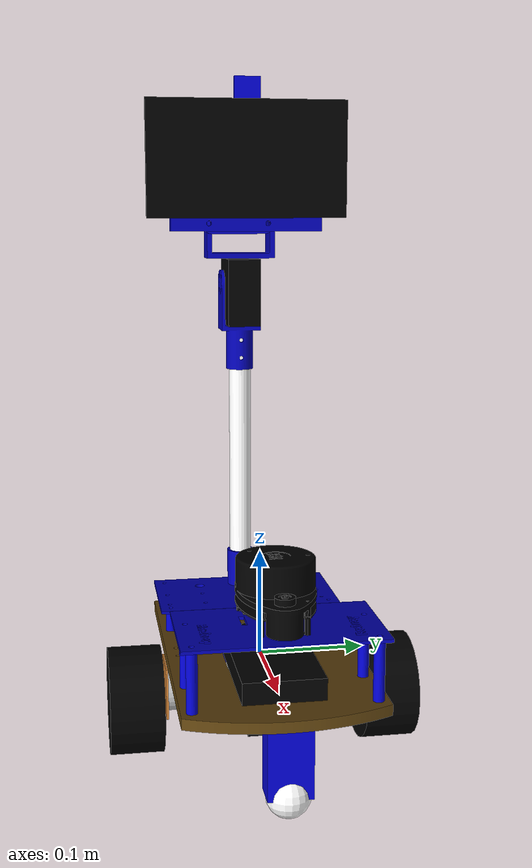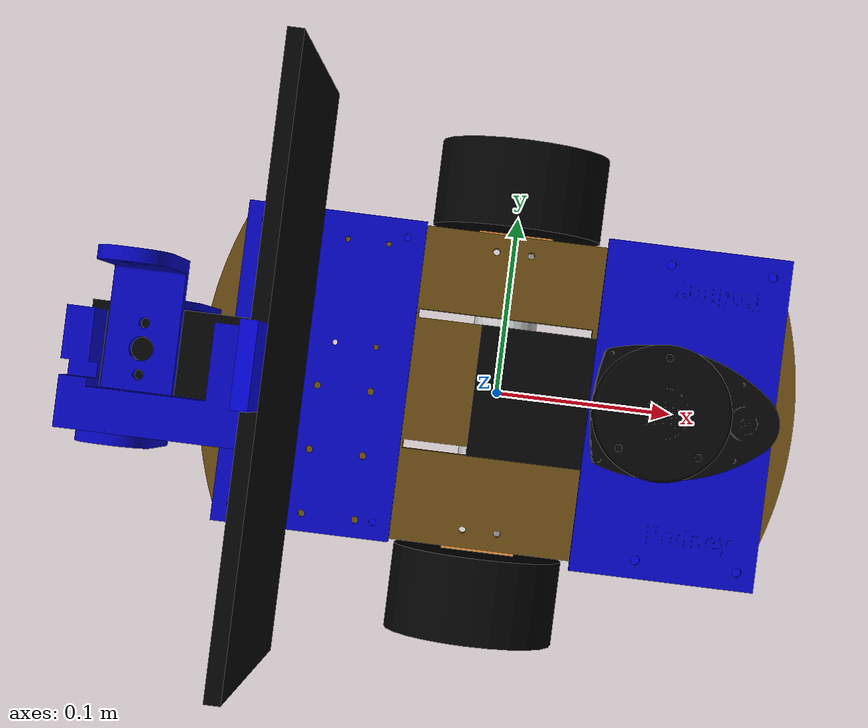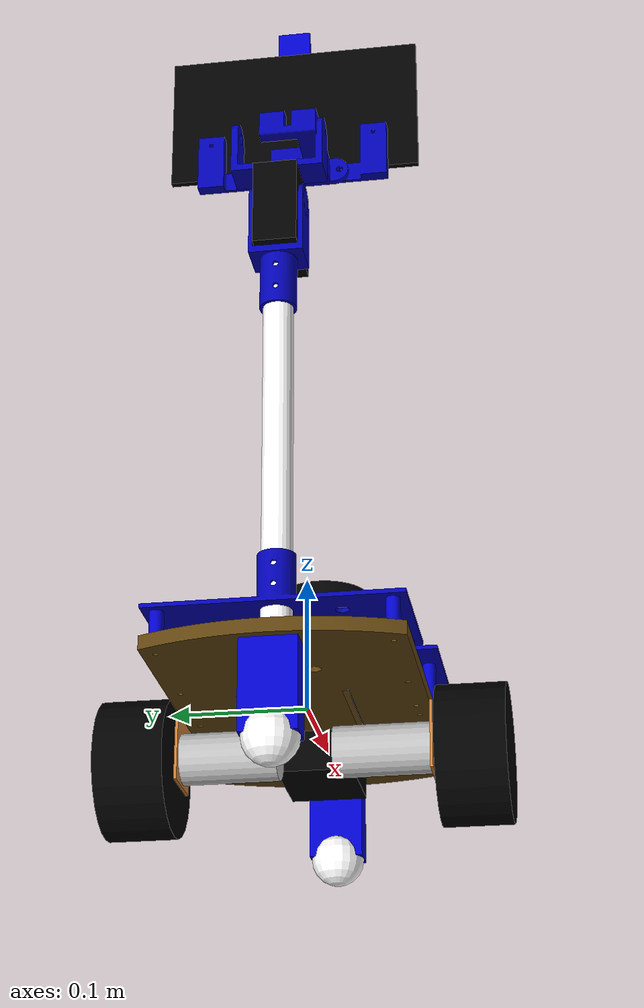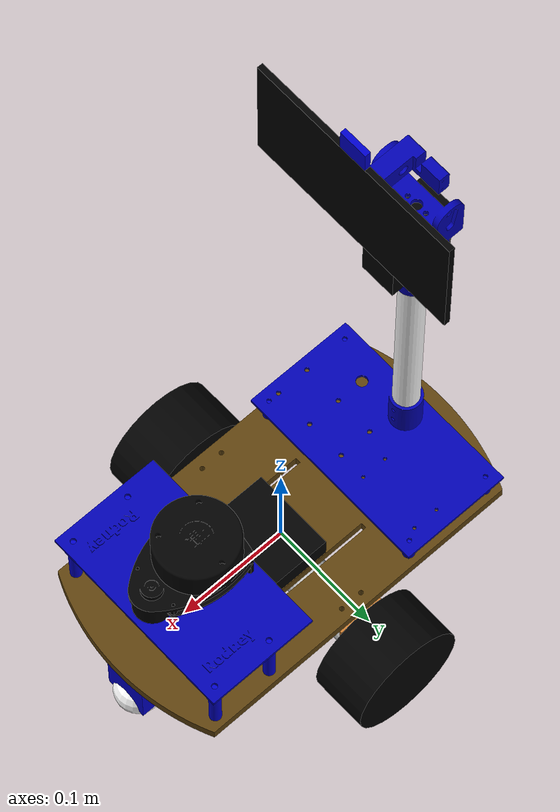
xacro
<?xml version="1.0"?>
<robot xmlns:xacro="http://www.ros.org/wiki/xacro" name="Rodney">

  <material name="blue">
    <color rgba="0 0 0.8 1"/>
  </material>

  <material name="white">
    <color rgba="1 1 1 1"/>
  </material>

  <material name="black">
    <color rgba="0 0 0 1"/>
  </material>

  <material name="silver">
    <color rgba="0.75 0.75 0.75 1"/>
  </material>

  <material name="bronze">
    <color rgba="0.8 0.498 0.196 1"/>
  </material>

  <xacro:property name="base_x" value="0.340"/>
  <xacro:property name="base_y" value="0.180"/>
  <xacro:property name="base_z" value="0.010"/>

  <link name="base_link">
    <visual>
      <geometry>
        <mesh filename="package://rodney/meshes/rodneyBase.dae"/>
      </geometry>
      <origin xyz="0.0 0.0 -${base_z/2.0}"/>
    </visual>
    <collision>
      <geometry>
        <box size="${base_x} ${base_y} ${base_z}"/>
      </geometry>
    </collision>
    <inertial>
      <mass value="0.300"/>
      <inertia ixx="0.000813" ixy="0.0" ixz="0.0" iyy="0.002893" iyz="0.0" izz="0.0037"/>
    </inertial>
  </link>

  <!-- Battery packs -->

  <link name="AAx10">
    <visual>
      <geometry>
        <box size="0.075 0.056 0.030"/>
      </geometry>
      <material name="black" />
    </visual>
    <collision>
      <geometry>
        <box size="0.075 0.056 0.030"/>
      </geometry>
    </collision>
    <inertial>
      <mass value="0.259"/>
      <inertia ixx="8.71e-5" ixy="0.0" ixz="0.0" iyy="0.000141" iyz="0.0" izz="0.000189"/>
    </inertial>
  </link>

  <joint name="base_to_AAx10" type="fixed">
    <parent link="base_link"/>
    <child link="AAx10"/>
    <origin xyz="0.070 0.0 -0.020"/>
  </joint>

  <link name="USB_PACK">
    <visual>
      <geometry>
        <box size="0.146 0.074 0.020"/>
      </geometry>
      <material name="black" />
    </visual>
    <collision>
      <geometry>
        <box size="0.146 0.074 0.020"/>
      </geometry>
    </collision>
    <inertial>
      <mass value="0.358"/>
      <inertia ixx="0.000175" ixy="0.0" ixz="0.0" iyy="0.000648" iyz="0.0" izz="0.000799"/>
    </inertial>
  </link>

  <joint name="base_to_USB_PACK" type="fixed">
    <parent link="base_link"/>
    <child link="USB_PACK"/>
    <origin xyz="0.060 0.0 0.015"/>
  </joint>

  <!-- Motors and wheels -->

  <xacro:macro name="motor_bracket" params="prefix reflect">
    <link name="${prefix}_motor_bracket">
      <visual>
        <geometry>
          <box size="0.042 0.049 0.002"/>
        </geometry>
        <origin rpy="1.58 0 0"/>
        <material name="bronze"/>
      </visual>
      <collision>
        <geometry>
          <box size="0.042 0.049 0.002"/>
        </geometry>
        <origin rpy="1.58 0 0"/>
      </collision>
      <inertial>
        <origin rpy="1.58 0 0"/>
        <mass value="0.035"/>
        <inertia ixx="7.01e-6" ixy="0.0" ixz="0.0" iyy="5.16e-6" iyz="0.0" izz="1.21e-5"/>
      </inertial>
    </link>
    <joint name="base_to_${prefix}_motor_bracket" type="fixed">
      <parent link="base_link"/>
      <child link="${prefix}_motor_bracket"/>
      <origin xyz="0.0 ${reflect*0.091} -0.0291"/>
    </joint>
  </xacro:macro>

  <xacro:macro name="motor" params="prefix reflect">
    <link name="${prefix}_motor">
      <visual>
        <geometry>
          <cylinder length="0.070" radius="0.0185"/>
        </geometry>
        <origin rpy="1.57 0 0"/>
        <material name="silver"/>
      </visual>
      <collision>
        <geometry>
          <cylinder length="0.070" radius="0.0185"/>
        </geometry>
        <origin rpy="1.57 0 0"/>
      </collision>
      <inertial>
        <origin rpy="1.57 0 0"/>
        <mass value="0.206"/>
        <inertia ixx="0.000101743" ixy="0.0" ixz="0.0" iyy="0.000101743" iyz="0.0" izz="3.52518e-5"/>
      </inertial>
    </link>
    <joint name="${prefix}_brk_to_${prefix}_motor" type="fixed">
      <parent link="${prefix}_motor_bracket"/>
      <child link="${prefix}_motor"/>
      <origin xyz="0.0 ${reflect*0.036} -0.004"/>
    </joint>
  </xacro:macro>

  <xacro:macro name="wheel" params="prefix reflect">
    <link name="${prefix}_wheel">
      <visual>
        <geometry>
          <cylinder length="0.050" radius="0.050"/>
        </geometry>
        <origin rpy="1.57 0 0"/>
        <material name="black"/>
      </visual>
      <collision>
        <geometry>
          <cylinder length="0.050" radius="0.050"/>
        </geometry>
        <origin rpy="1.57 0 0"/>
      </collision>
      <inertial>
        <origin rpy="1.57 0 0"/>
        <mass value="0.117"/>
      <inertia ixx="0.0000975" ixy="0.0" ixz="0.0" iyy="0.0000975" iyz="0.0" izz="0.00014625"/>
      </inertial>
    </link>
    <joint name="${prefix}_brk_to_${prefix}_wheel" type="continuous">
      <axis xyz="0 1 0"/>
      <parent link="${prefix}_motor_bracket"/>
      <child link="${prefix}_wheel"/>
      <origin xyz="0.0 ${reflect*0.029} -0.0105"/>
    </joint>
  </xacro:macro>

  <!-- left -->
  <xacro:motor_bracket prefix="left" reflect="1"/>
  <xacro:motor prefix="left" reflect="-1"/>
  <xacro:wheel prefix="left" reflect="1"/>

  <!-- right -->
  <xacro:motor_bracket prefix="right" reflect="-1"/>
  <xacro:motor prefix="right" reflect="1"/>
  <xacro:wheel prefix="right" reflect="-1"/>

  <!-- Casters -->

  <xacro:macro name="caster_bracket" params="prefix reflect">
    <link name="${prefix}_caster_bracket">
      <visual>
        <geometry>
          <box size="0.025 0.040 0.065"/>
        </geometry>
        <material name="blue" />
      </visual>
      <collision>
        <geometry>
          <box size="0.025 0.040 0.065"/>
        </geometry>
      </collision>
      <inertial>
        <mass value="0.030"/>
        <inertia ixx="1.46e-5" ixy="0.0" ixz="0.0" iyy="2.21e-5" iyz="0.0" izz="5.56e-6"/>
      </inertial>
    </link>
    <joint name="base_to_${prefix}_caster" type="fixed">
      <parent link="base_link"/>
      <child link="${prefix}_caster_bracket"/>
      <origin xyz="${reflect*0.150} 0.0 -0.037"/>
    </joint>
  </xacro:macro>

  <xacro:macro name="caster" params="prefix">
    <link name="${prefix}_caster">
      <visual>
        <geometry>
          <sphere radius="0.020"/>
        </geometry>
        <material name="white" />
      </visual>
      <collision>
        <geometry>
          <sphere radius="0.020"/>
        </geometry>
      </collision>
      <inertial>
        <mass value="0.003"/>
        <inertia ixx="4.8e-7" ixy="0.0" ixz="0.0" iyy="4.8e-7" iyz="0.0" izz="4.8e-7"/>
      </inertial>
    </link>
    <joint name="${prefix}_caster_bk_to_ball" type="continuous">
      <axis xyz="1 1 1"/>
      <parent link="${prefix}_caster_bracket"/>
      <child link="${prefix}_caster"/>
      <origin xyz="0.0 0.0 -0.0325"/>
    </joint>
  </xacro:macro>

  <!-- Front -->
  <xacro:caster_bracket prefix="front" reflect="1"/>
  <xacro:caster prefix="front"/>

  <!-- Rear -->
  <xacro:caster_bracket prefix="rear" reflect="-1"/>
  <xacro:caster prefix="rear"/>

  <!-- Rear platform -->

  <xacro:property name="rear_post_height" value="0.020"/>
  <xacro:property name="rear_post_radius" value="0.005"/>

  <xacro:macro name="rear_post" params="postfix pos_x reflect_y">
    <link name="rear_post_${postfix}">
      <visual>
        <geometry>
          <cylinder length="${rear_post_height}" radius="${rear_post_radius}"/>
        </geometry>
        <origin xyz="0.0 0.0 ${rear_post_height/2.0}"/>
        <material name="blue"/>
      </visual>
      <collision>
        <geometry>
          <cylinder length="${rear_post_height}" radius="${rear_post_radius}"/>
        </geometry>
        <origin xyz="0.0 0.0 ${rear_post_height/2.0}"/>
      </collision>
      <inertial>
        <!-- Move centre of gravity back to middle of link -->
        <origin xyz="0.0 0.0 ${rear_post_height/2.0}"/>
        <mass value="0.001"/>
        <inertia ixx="3.95833e-8" ixy="0.0" ixz="0.0" iyy="3.95833e-8" iyz="0.0" izz="1.25e-8"/>
      </inertial>
    </link>
    <joint name="base_to_rear_post_${postfix}" type="fixed">
      <parent link="base_link"/>
      <child link="rear_post_${postfix}"/>
      <origin xyz="${pos_x} ${reflect_y*((base_y/2.0)-0.010)} ${base_z/2.0}"/>
    </joint>
  </xacro:macro>

  <xacro:rear_post postfix="1" pos_x="-0.06" reflect_y="1"/>
  <xacro:rear_post postfix="2" pos_x="-0.14" reflect_y="1"/>
  <xacro:rear_post postfix="3" pos_x="-0.06" reflect_y="-1"/>
  <xacro:rear_post postfix="4" pos_x="-0.14" reflect_y="-1"/>

  <xacro:property name="rear_platf_z" value="0.003"/>

  <link name="rear_platform">
    <visual>
      <geometry>
        <mesh filename="package://rodney/meshes/smallRearPlatform.dae"/>
      </geometry>
      <origin rpy="0 0 1.57" xyz="0.050 0.0 -${rear_platf_z/2.0}"/>
    </visual>
    <collision>
      <geometry>
        <box size="0.180 0.098 0.003"/>
      </geometry>
    </collision>
    <inertial>
      <mass value="0.050"/>
      <inertia ixx="4.01e-5" ixy="0.0" ixz="0.0" iyy="0.000135" iyz="0.0" izz="0.000175"/>
    </inertial>
  </link>

  <joint name="rear_post_1_to_rear_platform" type="fixed">
    <parent link="rear_post_1"/>
    <child link="rear_platform"/>
    <origin xyz="-0.040 -0.080 ${rear_post_height+(rear_platf_z/2.0)}"/>
  </joint>

  <!-- Neck and head -->

  <link name="neck">
    <visual>
      <geometry>
        <cylinder length="0.30" radius="0.011"/>
      </geometry>
      <material name="white"/>
    </visual>
    <collision>
      <geometry>
        <cylinder length="0.30" radius="0.011"/>
      </geometry>
    </collision>
    <inertial>
      <mass value="0.033"/>
      <inertia ixx="0.000248498" ixy="0.0" ixz="0.0" iyy="1.9965e-6" iyz="0.0" izz="0.000248498"/>
    </inertial>
  </link>

  <joint name="rear_platform_to_neck" type="fixed">
    <parent link="rear_platform"/>
    <child link="neck"/>
    <origin xyz="-0.030 0.0 0.1205"/>
  </joint>

  <link name="head_fixing">
    <visual>
      <geometry>
        <mesh filename="package://rodney/meshes/headFixing.dae"/>
      </geometry>
      <origin xyz="0.0 0.0 -0.040"/>
    </visual>
    <collision>
      <geometry>
        <box size="0.03 0.04 0.1"/>
      </geometry>
    </collision>
    <inertial>
      <mass value="0.015"/>
      <inertia ixx="1.45e-5" ixy="0.0" ixz="0.0" iyy="1.36e-5" iyz="0.0" izz="3.13e-6"/>
    </inertial>
  </link>

  <joint name="neck_to_head_fixing" type="fixed">
    <parent link="neck"/>
    <child link="head_fixing"/>
    <origin xyz="0.0 0.0 0.150"/>
  </joint>

  <link name="head_pan_servo_block">
    <visual>
      <geometry>
        <box size="0.057 0.032 0.066"/>
      </geometry>
      <material name="black"/>
    </visual>
    <collision>
      <geometry>
        <box size="0.057 0.032 0.066"/>
      </geometry>
    </collision>
    <inertial>
      <mass value="0.084"/>
      <inertia ixx="3.77e-5" ixy="0.0" ixz="0.0" iyy="5.23e-5" iyz="0.0" izz="2.99e-5"/>
    </inertial>
  </link>

  <joint name="head_fixing_to_servo_block" type="fixed">
    <parent link="head_fixing"/>
    <child link="head_pan_servo_block"/>
    <origin xyz="0.008 0.0 0.039"/>
  </joint>

  <link name="head_pan_bracket">
    <visual>
      <geometry>
        <mesh filename="package://rodney/meshes/headPanBracket.dae"/>
      </geometry>
    </visual>
    <collision>
      <geometry>
        <box size="0.025 0.068 0.045"/>
      </geometry>
      <origin xyz="0.0 0.0 0.0225"/>
    </collision>
    <inertial>
      <mass value="0.010"/>
      <inertia ixx="5.54e-6" ixy="0.0" ixz="0.0" iyy="2.21e-6" iyz="0.0" izz="4.37e-6"/>
    </inertial>
  </link>

  <joint name="head_pan" type="revolute">
    <axis xyz="0 0 1"/>
    <limit effort="1000.0" lower="-1.5708" upper="1.5708" velocity="0.5"/>
    <parent link="head_pan_servo_block"/>
    <child link="head_pan_bracket"/>
    <origin xyz="-0.008 0.0 0.033"/>
  </joint>

  <link name="head_tilt_arm">
    <visual>
      <geometry>
        <mesh filename="package://rodney/meshes/headTiltArm.dae"/>
      </geometry>
      <!-- Using origin of mesh which helps to line up the peices connected to this odd shape -->
    </visual>
    <collision>
      <geometry>
        <box size="0.075 0.065 0.020"/>
      </geometry>
      <origin rpy="1.58 0 0" xyz="0.018 0.0 0.00"/>
    </collision>
    <inertial>
      <mass value="0.019"/>
      <origin rpy="1.58 0 0" xyz="0.018 0.0 0.00"/>
      <inertia ixx="7.32e-6" ixy="0.0" ixz="0.0" iyy="9.54e-6" iyz="0.0" izz="1.56e-5"/>
    </inertial>
  </link>

  <joint name="head_tilt" type="revolute">
    <axis xyz="0 1 0"/>
    <limit effort="1000.0" lower="-1.39626" upper="0.5" velocity="0.698132"/>
    <parent link="head_pan_bracket"/>
    <child link="head_tilt_arm"/>
    <origin xyz="0.0 -0.009 0.035"/>
  </joint>

  <link name="display_bracket">
    <visual>
      <geometry>
        <mesh filename="package://rodney/meshes/displayBracket.dae"/>
      </geometry>
      <origin xyz="0.003 0.008 0.0"/>
    </visual>
    <collision>
      <geometry>
        <box size="0.010 0.146 0.045"/>
      </geometry>
      <origin xyz="-0.002 0.008 0.015"/>
    </collision>
    <inertial>
      <mass value="0.012"/>
      <inertia ixx="2.33e-5" ixy="0.0" ixz="0.0" iyy="2.13e-6" iyz="0.0" izz="2.14e-5"/>
    </inertial>
  </link>

  <joint name="head_tilt_arm_to_display_bracket" type="fixed">
    <parent link="head_tilt_arm"/>
    <child link="display_bracket"/>
    <origin xyz="0.056 0.0 0.0"/>
  </joint>

  <link name="display">
    <visual>
      <geometry>
        <box size="0.005 0.192 0.110"/>
      </geometry>
      <material name="black"/>
    </visual>
    <collision>
      <geometry>
        <box size="0.005 0.192 0.110"/>
      </geometry>
    </collision>
    <inertial>

      <mass value="0.338"/>
      <inertia ixx="0.001379" ixy="0.0" ixz="0.0" iyy="0.000342" iyz="0.0" izz="0.001039"/>
    </inertial>
  </link>

  <joint name="display_bracket_to_display" type="fixed">
    <parent link="display_bracket"/>
    <child link="display"/>
    <origin xyz="0.0055 0.008 0.060"/>
  </joint>

  <link name="camera">
    <visual>
      <geometry>
        <box size="0.005 0.025 0.020"/>
      </geometry>
      <material name="blue"/>
    </visual>
    <collision>
      <geometry>
        <box size="0.005 0.025 0.020"/>
      </geometry>
    </collision>
    <inertial>
      <mass value="0.001"/>
      <inertia ixx="3.52e-7" ixy="0.0" ixz="0.0" iyy="3.02e-7" iyz="0.0" izz="5.42e-8"/>
    </inertial>
  </link>

  <joint name="camera_joint" type="fixed">
    <parent link="display"/>
    <child link="camera"/>
    <origin xyz="0.0 0.0 0.065"/>
  </joint>

  <!-- Front platform -->

  <xacro:property name="fwd_post_height" value="0.055"/>
  <xacro:property name="fwd_post_radius" value="0.005"/>

  <xacro:macro name="fwd_post" params="postfix pos_x reflect_y">
    <link name="fwd_post_${postfix}">
      <visual>
        <geometry>
          <cylinder length="${fwd_post_height}" radius="${fwd_post_radius}"/>
        </geometry>
        <origin xyz="0.0 0.0 ${fwd_post_height/2.0}"/>
        <material name="blue"/>
      </visual>
      <collision>
        <geometry>
          <cylinder length="${fwd_post_height}" radius="${fwd_post_radius}"/>
        </geometry>
        <origin xyz="0.0 0.0 ${fwd_post_height/2.0}"/>
      </collision>
      <inertial>
        <!-- Move centre of gravity back to middle of link -->
        <origin xyz="0.0 0.0 ${fwd_post_height/2.0}"/>
        <mass value="0.0015"/>
        <inertia ixx="1.12594e-7" ixy="0.0" ixz="0.0" iyy="1.12594e-7" iyz="0.0" izz="1.875e-10"/>
      </inertial>
    </link>
    <joint name="base_to_fwd_post_${postfix}" type="fixed">
      <parent link="base_link"/>
      <child link="fwd_post_${postfix}"/>
      <origin xyz="${pos_x} ${reflect_y*((base_y/2.0)-0.010)} ${base_z/2.0}"/>
    </joint>
  </xacro:macro>

  <xacro:fwd_post postfix="1" pos_x="0.14" reflect_y="1"/>
  <xacro:fwd_post postfix="2" pos_x="0.14" reflect_y="-1"/>
  <xacro:fwd_post postfix="3" pos_x="0.085" reflect_y="-1"/>
  <xacro:fwd_post postfix="4" pos_x="0.085" reflect_y="1"/>

  <xacro:property name="fwd_platf_z" value="0.003"/>

  <link name="fwd_platform">
    <visual>
      <geometry>
        <mesh filename="package://rodney/meshes/fwdPlatform.dae"/>
      </geometry>
      <origin xyz="-0.0125 0.0 0.0"/>
    </visual>
    <collision>
      <geometry>
        <box size="0.075 0.018 0.003"/>
      </geometry>
    </collision>
    <inertial>
      <mass value="0.030"/>
      <inertia ixx="8.1e-5" ixy="0.0" ixz="0.0" iyy="4.02e-6" iyz="0.0" izz="0.000085" />
    </inertial>
  </link>

  <joint name="fwd_post_1_to_fwd_platform" type="fixed">
    <parent link="fwd_post_1"/>
    <child link="fwd_platform"/>
    <origin xyz="-0.040 -0.080 ${fwd_post_height+(fwd_platf_z/2.0)}"/>
  </joint>

  <!-- LIDAR -->
  <!-- Using mesh of a model -->
  <link name="laser">
    <visual>
      <geometry>
        <mesh filename="package://rodney/meshes/rplidar.dae"/>
      </geometry>
      <origin rpy="1.57 0 0" xyz="-0.035 0.035 -0.044"/>
    </visual>
    <collision>
      <geometry>
        <box size="0.0985 0.070 0.060"/>
      </geometry>
    </collision>
    <inertial>
      <mass value="0.213"/>
      <inertia ixx="0.000151" ixy="0.0" ixz="0.0" iyy="0.000236" iyz="0.0" izz="0.000259" />
    </inertial>
  </link>

  <joint name="fwd_platform_to_lidar" type="fixed">
    <parent link="fwd_platform"/>
    <child link ="laser"/>
    <origin xyz="-0.015 0.0 0.0455"/>
  </joint>

  <!-- Using Box and cylinder -->

  <!-- Gazebo stuff -->

  <gazebo reference="left_wheel">
    <material>Gazebo/Black</material>
  </gazebo>

  <gazebo reference="right_wheel">
    <material>Gazebo/Black</material>
  </gazebo>

  <gazebo reference="rear_post_1">
    <material>Gazebo/Blue</material>
  </gazebo>

  <gazebo reference="rear_post_2">
    <material>Gazebo/Blue</material>
  </gazebo>

  <gazebo reference="rear_post_3">
    <material>Gazebo/Blue</material>
  </gazebo>

  <gazebo reference="rear_post_4">
    <material>Gazebo/Blue</material>
  </gazebo>

  <gazebo reference="display">
    <material>Gazebo/Black</material>
  </gazebo>

  <gazebo reference="head_pan_servo_block">
    <material>Gazebo/Black</material>
  </gazebo>

  <gazebo reference="AAx10">
    <material>Gazebo/Black</material>
  </gazebo>

  <gazebo reference="USB_PACK">
    <material>Gazebo/Black</material>
  </gazebo>

  <gazebo reference="front_caster_bracket">
    <material>Gazebo/Blue</material>
  </gazebo>

  <gazebo reference="rear_caster_bracket">
    <material>Gazebo/Blue</material>
  </gazebo>

  <gazebo reference="camera">
    <material>Gazebo/Blue</material>
  </gazebo>

  <gazebo reference="fwd_post_1">
    <material>Gazebo/Blue</material>
  </gazebo>

  <gazebo reference="fwd_post_2">
    <material>Gazebo/Blue</material>
  </gazebo>

  <gazebo reference="fwd_post_3">
    <material>Gazebo/Blue</material>
  </gazebo>

  <gazebo reference="fwd_post_4">
    <material>Gazebo/Blue</material>
  </gazebo>

  <gazebo reference="lidar_servo">
    <material>Gazebo/Black</material>
  </gazebo>

  <gazebo reference="lidar_link">
    <material>Gazebo/Black</material>
  </gazebo>

  <gazebo reference="lidar_base">
    <material>Gazebo/Black</material>
  </gazebo>

  <!-- To control the wheels -->
  <gazebo>
    <plugin name="differential_drive_controller" filename="libgazebo_ros_diff_drive.so">
      <alwaysOn>true</alwaysOn>
      <legacyMode>false</legacyMode>
      <updateRate>100.0</updateRate>
      <rosDebugLevel>na</rosDebugLevel>
      <publishWheelTF>false</publishWheelTF>
      <publishOdomTF>true</publishOdomTF>
      <publishWheelJointState>false</publishWheelJointState>
      <wheelAcceleration>0</wheelAcceleration>
      <wheelTorque>5</wheelTorque>
      <leftJoint>left_brk_to_left_wheel</leftJoint>
      <rightJoint>right_brk_to_right_wheel</rightJoint>
      <wheelSeparation>0.230</wheelSeparation>
      <wheelDiameter>0.106</wheelDiameter>
      <commandTopic>cmd_vel</commandTopic>
      <odometryTopic>odom</odometryTopic>
      <odometryFrame>odom</odometryFrame>
      <robotBaseFrame>base_footprint</robotBaseFrame>
    </plugin>
  </gazebo>

  <!-- To control head pan/tilt -->

  <gazebo>
    <plugin name="gazebo_ros_control" filename="libgazebo_ros_control.so">
      <legacyModeNS>true</legacyModeNS>
    </plugin>
  </gazebo>

  <transmission name="head_pan_tran">
    <type>transmission_interface/SimpleTransmission</type>
    <joint name="head_pan">
      <hardwareInterface>hardware_interface/PositionJointInterface</hardwareInterface>
    </joint>
    <actuator name="pan">
      <hardwareInterface>PositionJointInterface</hardwareInterface>
      <mechanicalReduction>1</mechanicalReduction>
    </actuator>
  </transmission>

  <transmission name="head_tilt_tran">
    <type>transmission_interface/SimpleTransmission</type>
    <joint name="head_tilt">
      <hardwareInterface>hardware_interface/PositionJointInterface</hardwareInterface>
    </joint>
    <actuator name="tilt">
      <hardwareInterface>PositionJointInterface</hardwareInterface>
      <mechanicalReduction>1</mechanicalReduction>
    </actuator>
  </transmission>

  <gazebo>
    <plugin name="joint_state_publisher"
            filename="libgazebo_ros_joint_state_publisher.so">
      <jointName>head_pan, head_tilt, front_caster_bk_to_ball, rear_caster_bk_to_ball, left_brk_to_left_wheel, right_brk_to_right_wheel</jointName>
      <updateRate>20.0</updateRate>
    </plugin>
  </gazebo>

  <!-- camera -->
  <gazebo reference="camera">
    <sensor type="camera" name="camera1">
      <update_rate>30.0</update_rate>
      <camera name="head">
        <horizontal_fov>1.3962634</horizontal_fov>
        <image>
          <width>800</width>
          <height>800</height>
          <format>R8G8B8</format>
        </image>
        <clip>
          <near>0.02</near>
          <far>300</far>
        </clip>
        <noise>
          <type>gaussian</type>
          <!-- Noise is sampled independently per pixel on each frame.
               That pixel's noise value is added to each of its color
               channels, which at that point lie in the range [0,1]. -->
          <mean>0.0</mean>
          <stddev>0.007</stddev>
        </noise>
      </camera>
      <plugin name="camera_controller" filename="libgazebo_ros_camera.so">
        <alwaysOn>true</alwaysOn>
        <updateRate>0.0</updateRate>
        <cameraName>raspicam_node</cameraName>
        <imageTopicName>image</imageTopicName>
        <cameraInfoTopicName>camera_info</cameraInfoTopicName>
        <frameName>camera</frameName>
        <hackBaseline>0.07</hackBaseline>
        <distortionK1>0.0</distortionK1>
        <distortionK2>0.0</distortionK2>
        <distortionK3>0.0</distortionK3>
        <distortionT1>0.0</distortionT1>
        <distortionT2>0.0</distortionT2>
      </plugin>
    </sensor>
  </gazebo>

  <!-- LIDAR -->
  <gazebo reference="laser">
    <sensor type="ray" name="base_lidar_sensor">
      <pose>0 0 0 0 0 0</pose>
      <visualize>false</visualize>
      <update_rate>10</update_rate>
      <ray>
        <scan>
          <horizontal>
            <samples>720</samples>
            <resolution>1</resolution>
            <min_angle>-2.70526</min_angle>
            <max_angle>2.70526</max_angle>
          </horizontal>
        </scan>
        <range>
          <min>0.15</min>
          <max>12.0</max>
          <resolution>0.01</resolution>
        </range>
        <noise>
          <type>gaussian</type>
          <mean>0.0</mean>
          <stddev>0.01</stddev>
        </noise>
      </ray>
      <plugin name="gazebo_ros_head_hokuyo_controller" filename="libgazebo_ros_laser.so">
        <topicName>scan</topicName>
        <frameName>laser</frameName>
      </plugin>
    </sensor>
  </gazebo>

</robot>
